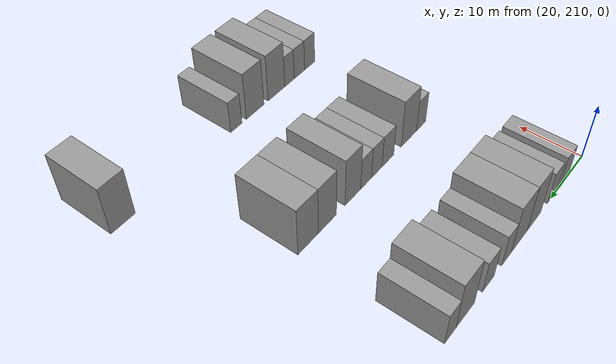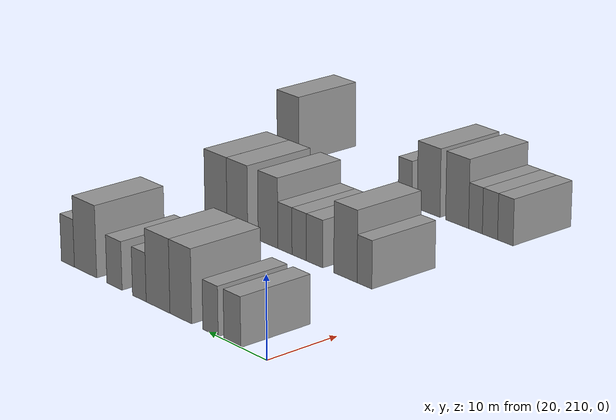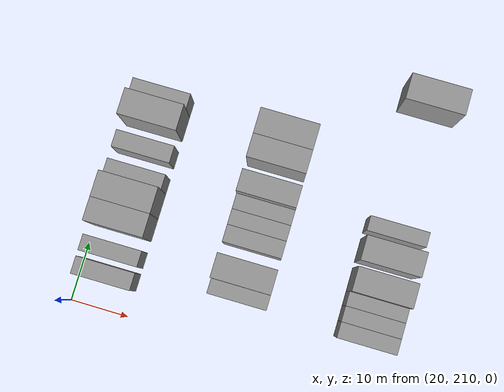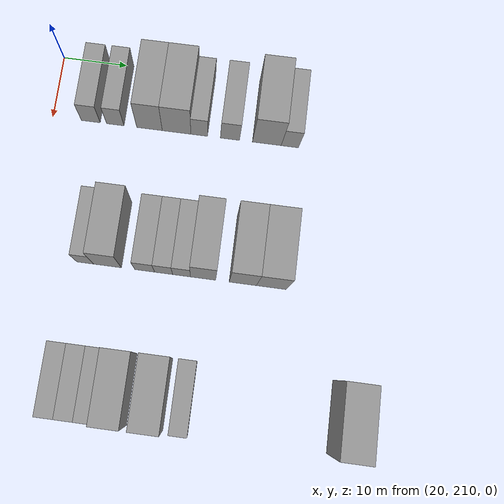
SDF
<sdf version="1.6">
 <world name="default">
  <model name="building_112">
   <static>1</static>
   <pose>25.0000 215.9510 0 0.000000 0.000000 0.000000</pose>
   <link name="link">
    <pose>0 0 3.00 0 0 0</pose>
    <collision name="collision"><geometry><box><size>10.0000 2.9405 6.0000</size></box></geometry></collision>
    <visual name="visual">
     <cast_shadows>0</cast_shadows>
     <geometry><box><size>10.0000 2.9405 6.0000</size></box></geometry>
     <material>
      <script>
       <uri>model://grey_wall/materials/scripts</uri>
       <uri>model://grey_wall/materials/textures</uri>
       <name>vrc/grey_wall</name>
      </script>
     </material>
    </visual>
   </link>
  </model>
  <model name="building_113">
   <static>1</static>
   <pose>25.0000 219.7814 0 0.000000 0.000000 0.000000</pose>
   <link name="link">
    <pose>0 0 3.00 0 0 0</pose>
    <collision name="collision"><geometry><box><size>10.0000 2.7203 6.0000</size></box></geometry></collision>
    <visual name="visual">
     <cast_shadows>0</cast_shadows>
     <geometry><box><size>10.0000 2.7203 6.0000</size></box></geometry>
     <material>
      <script>
       <uri>model://grey_wall/materials/scripts</uri>
       <uri>model://grey_wall/materials/textures</uri>
       <name>vrc/grey_wall</name>
      </script>
     </material>
    </visual>
   </link>
  </model>
  <model name="building_114">
   <static>1</static>
   <pose>25.0000 225.1316 0 0.000000 0.000000 0.000000</pose>
   <link name="link">
    <pose>0 0 4.50 0 0 0</pose>
    <collision name="collision"><geometry><box><size>10.0000 3.9802 9.0000</size></box></geometry></collision>
    <visual name="visual">
     <cast_shadows>0</cast_shadows>
     <geometry><box><size>10.0000 3.9802 9.0000</size></box></geometry>
     <material>
      <script>
       <uri>model://grey_wall/materials/scripts</uri>
       <uri>model://grey_wall/materials/textures</uri>
       <name>vrc/grey_wall</name>
      </script>
     </material>
    </visual>
   </link>
  </model>
  <model name="building_115">
   <static>1</static>
   <pose>25.0000 229.3415 0 0.000000 0.000000 0.000000</pose>
   <link name="link">
    <pose>0 0 4.50 0 0 0</pose>
    <collision name="collision"><geometry><box><size>10.0000 4.4395 9.0000</size></box></geometry></collision>
    <visual name="visual">
     <cast_shadows>0</cast_shadows>
     <geometry><box><size>10.0000 4.4395 9.0000</size></box></geometry>
     <material>
      <script>
       <uri>model://grey_wall/materials/scripts</uri>
       <uri>model://grey_wall/materials/textures</uri>
       <name>vrc/grey_wall</name>
      </script>
     </material>
    </visual>
   </link>
  </model>
  <model name="building_116">
   <static>1</static>
   <pose>25.0000 232.8569 0 0.000000 0.000000 0.000000</pose>
   <link name="link">
    <pose>0 0 3.00 0 0 0</pose>
    <collision name="collision"><geometry><box><size>10.0000 2.5914 6.0000</size></box></geometry></collision>
    <visual name="visual">
     <cast_shadows>0</cast_shadows>
     <geometry><box><size>10.0000 2.5914 6.0000</size></box></geometry>
     <material>
      <script>
       <uri>model://grey_wall/materials/scripts</uri>
       <uri>model://grey_wall/materials/textures</uri>
       <name>vrc/grey_wall</name>
      </script>
     </material>
    </visual>
   </link>
  </model>
  <model name="building_117">
   <static>1</static>
   <pose>25.0000 237.6333 0 0.000000 0.000000 0.000000</pose>
   <link name="link">
    <pose>0 0 3.00 0 0 0</pose>
    <collision name="collision"><geometry><box><size>10.0000 2.9615 6.0000</size></box></geometry></collision>
    <visual name="visual">
     <cast_shadows>0</cast_shadows>
     <geometry><box><size>10.0000 2.9615 6.0000</size></box></geometry>
     <material>
      <script>
       <uri>model://grey_wall/materials/scripts</uri>
       <uri>model://grey_wall/materials/textures</uri>
       <name>vrc/grey_wall</name>
      </script>
     </material>
    </visual>
   </link>
  </model>
  <model name="building_118">
   <static>1</static>
   <pose>25.0000 243.3405 0 0.000000 0.000000 0.000000</pose>
   <link name="link">
    <pose>0 0 4.50 0 0 0</pose>
    <collision name="collision"><geometry><box><size>10.0000 4.4528 9.0000</size></box></geometry></collision>
    <visual name="visual">
     <cast_shadows>0</cast_shadows>
     <geometry><box><size>10.0000 4.4528 9.0000</size></box></geometry>
     <material>
      <script>
       <uri>model://grey_wall/materials/scripts</uri>
       <uri>model://grey_wall/materials/textures</uri>
       <name>vrc/grey_wall</name>
      </script>
     </material>
    </visual>
   </link>
  </model>
  <model name="building_119">
   <static>1</static>
   <pose>25.0000 246.8928 0 0.000000 0.000000 0.000000</pose>
   <link name="link">
    <pose>0 0 3.00 0 0 0</pose>
    <collision name="collision"><geometry><box><size>10.0000 2.6519 6.0000</size></box></geometry></collision>
    <visual name="visual">
     <cast_shadows>0</cast_shadows>
     <geometry><box><size>10.0000 2.6519 6.0000</size></box></geometry>
     <material>
      <script>
       <uri>model://grey_wall/materials/scripts</uri>
       <uri>model://grey_wall/materials/textures</uri>
       <name>vrc/grey_wall</name>
      </script>
     </material>
    </visual>
   </link>
  </model>
  <model name="building_226">
   <static>1</static>
   <pose>47.0000 218.8760 0 0.000000 0.000000 0.000000</pose>
   <link name="link">
    <pose>0 0 3.00 0 0 0</pose>
    <collision name="collision"><geometry><box><size>10.0000 2.5411 6.0000</size></box></geometry></collision>
    <visual name="visual">
     <cast_shadows>0</cast_shadows>
     <geometry><box><size>10.0000 2.5411 6.0000</size></box></geometry>
     <material>
      <script>
       <uri>model://grey_wall/materials/scripts</uri>
       <uri>model://grey_wall/materials/textures</uri>
       <name>vrc/grey_wall</name>
      </script>
     </material>
    </visual>
   </link>
  </model>
  <model name="building_227">
   <static>1</static>
   <pose>47.0000 222.2068 0 0.000000 0.000000 0.000000</pose>
   <link name="link">
    <pose>0 0 4.50 0 0 0</pose>
    <collision name="collision"><geometry><box><size>10.0000 4.1206 9.0000</size></box></geometry></collision>
    <visual name="visual">
     <cast_shadows>0</cast_shadows>
     <geometry><box><size>10.0000 4.1206 9.0000</size></box></geometry>
     <material>
      <script>
       <uri>model://grey_wall/materials/scripts</uri>
       <uri>model://grey_wall/materials/textures</uri>
       <name>vrc/grey_wall</name>
      </script>
     </material>
    </visual>
   </link>
  </model>
  <model name="building_228">
   <static>1</static>
   <pose>47.0000 227.7448 0 0.000000 0.000000 0.000000</pose>
   <link name="link">
    <pose>0 0 3.00 0 0 0</pose>
    <collision name="collision"><geometry><box><size>10.0000 2.9554 6.0000</size></box></geometry></collision>
    <visual name="visual">
     <cast_shadows>0</cast_shadows>
     <geometry><box><size>10.0000 2.9554 6.0000</size></box></geometry>
     <material>
      <script>
       <uri>model://grey_wall/materials/scripts</uri>
       <uri>model://grey_wall/materials/textures</uri>
       <name>vrc/grey_wall</name>
      </script>
     </material>
    </visual>
   </link>
  </model>
  <model name="building_229">
   <static>1</static>
   <pose>47.0000 230.5515 0 0.000000 0.000000 0.000000</pose>
   <link name="link">
    <pose>0 0 3.00 0 0 0</pose>
    <collision name="collision"><geometry><box><size>10.0000 2.6579 6.0000</size></box></geometry></collision>
    <visual name="visual">
     <cast_shadows>0</cast_shadows>
     <geometry><box><size>10.0000 2.6579 6.0000</size></box></geometry>
     <material>
      <script>
       <uri>model://grey_wall/materials/scripts</uri>
       <uri>model://grey_wall/materials/textures</uri>
       <name>vrc/grey_wall</name>
      </script>
     </material>
    </visual>
   </link>
  </model>
  <model name="building_230">
   <static>1</static>
   <pose>47.0000 233.2001 0 0.000000 0.000000 0.000000</pose>
   <link name="link">
    <pose>0 0 3.00 0 0 0</pose>
    <collision name="collision"><geometry><box><size>10.0000 2.6394 6.0000</size></box></geometry></collision>
    <visual name="visual">
     <cast_shadows>0</cast_shadows>
     <geometry><box><size>10.0000 2.6394 6.0000</size></box></geometry>
     <material>
      <script>
       <uri>model://grey_wall/materials/scripts</uri>
       <uri>model://grey_wall/materials/textures</uri>
       <name>vrc/grey_wall</name>
      </script>
     </material>
    </visual>
   </link>
  </model>
  <model name="building_231">
   <static>1</static>
   <pose>47.0000 236.3807 0 0.000000 0.000000 0.000000</pose>
   <link name="link">
    <pose>0 0 4.50 0 0 0</pose>
    <collision name="collision"><geometry><box><size>10.0000 3.7218 9.0000</size></box></geometry></collision>
    <visual name="visual">
     <cast_shadows>0</cast_shadows>
     <geometry><box><size>10.0000 3.7218 9.0000</size></box></geometry>
     <material>
      <script>
       <uri>model://grey_wall/materials/scripts</uri>
       <uri>model://grey_wall/materials/textures</uri>
       <name>vrc/grey_wall</name>
      </script>
     </material>
    </visual>
   </link>
  </model>
  <model name="building_232">
   <static>1</static>
   <pose>47.0000 242.2447 0 0.000000 0.000000 0.000000</pose>
   <link name="link">
    <pose>0 0 4.50 0 0 0</pose>
    <collision name="collision"><geometry><box><size>10.0000 4.0061 9.0000</size></box></geometry></collision>
    <visual name="visual">
     <cast_shadows>0</cast_shadows>
     <geometry><box><size>10.0000 4.0061 9.0000</size></box></geometry>
     <material>
      <script>
       <uri>model://grey_wall/materials/scripts</uri>
       <uri>model://grey_wall/materials/textures</uri>
       <name>vrc/grey_wall</name>
      </script>
     </material>
    </visual>
   </link>
  </model>
  <model name="building_233">
   <static>1</static>
   <pose>47.0000 246.4362 0 0.000000 0.000000 0.000000</pose>
   <link name="link">
    <pose>0 0 4.50 0 0 0</pose>
    <collision name="collision"><geometry><box><size>10.0000 4.3768 9.0000</size></box></geometry></collision>
    <visual name="visual">
     <cast_shadows>0</cast_shadows>
     <geometry><box><size>10.0000 4.3768 9.0000</size></box></geometry>
     <material>
      <script>
       <uri>model://grey_wall/materials/scripts</uri>
       <uri>model://grey_wall/materials/textures</uri>
       <name>vrc/grey_wall</name>
      </script>
     </material>
    </visual>
   </link>
  </model>
  <model name="building_347">
   <static>1</static>
   <pose>69.0000 218.0007 0 0.000000 0.000000 0.000000</pose>
   <link name="link">
    <pose>0 0 3.00 0 0 0</pose>
    <collision name="collision"><geometry><box><size>10.0000 2.6570 6.0000</size></box></geometry></collision>
    <visual name="visual">
     <cast_shadows>0</cast_shadows>
     <geometry><box><size>10.0000 2.6570 6.0000</size></box></geometry>
     <material>
      <script>
       <uri>model://grey_wall/materials/scripts</uri>
       <uri>model://grey_wall/materials/textures</uri>
       <name>vrc/grey_wall</name>
      </script>
     </material>
    </visual>
   </link>
  </model>
  <model name="building_348">
   <static>1</static>
   <pose>69.0000 220.6445 0 0.000000 0.000000 0.000000</pose>
   <link name="link">
    <pose>0 0 3.00 0 0 0</pose>
    <collision name="collision"><geometry><box><size>10.0000 2.6307 6.0000</size></box></geometry></collision>
    <visual name="visual">
     <cast_shadows>0</cast_shadows>
     <geometry><box><size>10.0000 2.6307 6.0000</size></box></geometry>
     <material>
      <script>
       <uri>model://grey_wall/materials/scripts</uri>
       <uri>model://grey_wall/materials/textures</uri>
       <name>vrc/grey_wall</name>
      </script>
     </material>
    </visual>
   </link>
  </model>
  <model name="building_349">
   <static>1</static>
   <pose>69.0000 223.1658 0 0.000000 0.000000 0.000000</pose>
   <link name="link">
    <pose>0 0 3.00 0 0 0</pose>
    <collision name="collision"><geometry><box><size>10.0000 2.4119 6.0000</size></box></geometry></collision>
    <visual name="visual">
     <cast_shadows>0</cast_shadows>
     <geometry><box><size>10.0000 2.4119 6.0000</size></box></geometry>
     <material>
      <script>
       <uri>model://grey_wall/materials/scripts</uri>
       <uri>model://grey_wall/materials/textures</uri>
       <name>vrc/grey_wall</name>
      </script>
     </material>
    </visual>
   </link>
  </model>
  <model name="building_350">
   <static>1</static>
   <pose>69.0000 226.4221 0 0.000000 0.000000 0.000000</pose>
   <link name="link">
    <pose>0 0 4.50 0 0 0</pose>
    <collision name="collision"><geometry><box><size>10.0000 4.1008 9.0000</size></box></geometry></collision>
    <visual name="visual">
     <cast_shadows>0</cast_shadows>
     <geometry><box><size>10.0000 4.1008 9.0000</size></box></geometry>
     <material>
      <script>
       <uri>model://grey_wall/materials/scripts</uri>
       <uri>model://grey_wall/materials/textures</uri>
       <name>vrc/grey_wall</name>
      </script>
     </material>
    </visual>
   </link>
  </model>
  <model name="building_351">
   <static>1</static>
   <pose>69.0000 231.5447 0 0.000000 0.000000 0.000000</pose>
   <link name="link">
    <pose>0 0 4.50 0 0 0</pose>
    <collision name="collision"><geometry><box><size>10.0000 4.1443 9.0000</size></box></geometry></collision>
    <visual name="visual">
     <cast_shadows>0</cast_shadows>
     <geometry><box><size>10.0000 4.1443 9.0000</size></box></geometry>
     <material>
      <script>
       <uri>model://grey_wall/materials/scripts</uri>
       <uri>model://grey_wall/materials/textures</uri>
       <name>vrc/grey_wall</name>
      </script>
     </material>
    </visual>
   </link>
  </model>
  <model name="building_352">
   <static>1</static>
   <pose>69.0000 235.8794 0 0.000000 0.000000 0.000000</pose>
   <link name="link">
    <pose>0 0 3.00 0 0 0</pose>
    <collision name="collision"><geometry><box><size>10.0000 2.5252 6.0000</size></box></geometry></collision>
    <visual name="visual">
     <cast_shadows>0</cast_shadows>
     <geometry><box><size>10.0000 2.5252 6.0000</size></box></geometry>
     <material>
      <script>
       <uri>model://grey_wall/materials/scripts</uri>
       <uri>model://grey_wall/materials/textures</uri>
       <name>vrc/grey_wall</name>
      </script>
     </material>
    </visual>
   </link>
  </model>
  <model name="building_353">
   <static>1</static>
   <pose>69.0000 258.7815 0 0.000000 0.000000 0.000000</pose>
   <link name="link">
    <pose>0 0 4.50 0 0 0</pose>
    <collision name="collision"><geometry><box><size>10.0000 4.4263 9.0000</size></box></geometry></collision>
    <visual name="visual">
     <cast_shadows>0</cast_shadows>
     <geometry><box><size>10.0000 4.4263 9.0000</size></box></geometry>
     <material>
      <script>
       <uri>model://grey_wall/materials/scripts</uri>
       <uri>model://grey_wall/materials/textures</uri>
       <name>vrc/grey_wall</name>
      </script>
     </material>
    </visual>
   </link>
  </model>
 </world>
</sdf>
